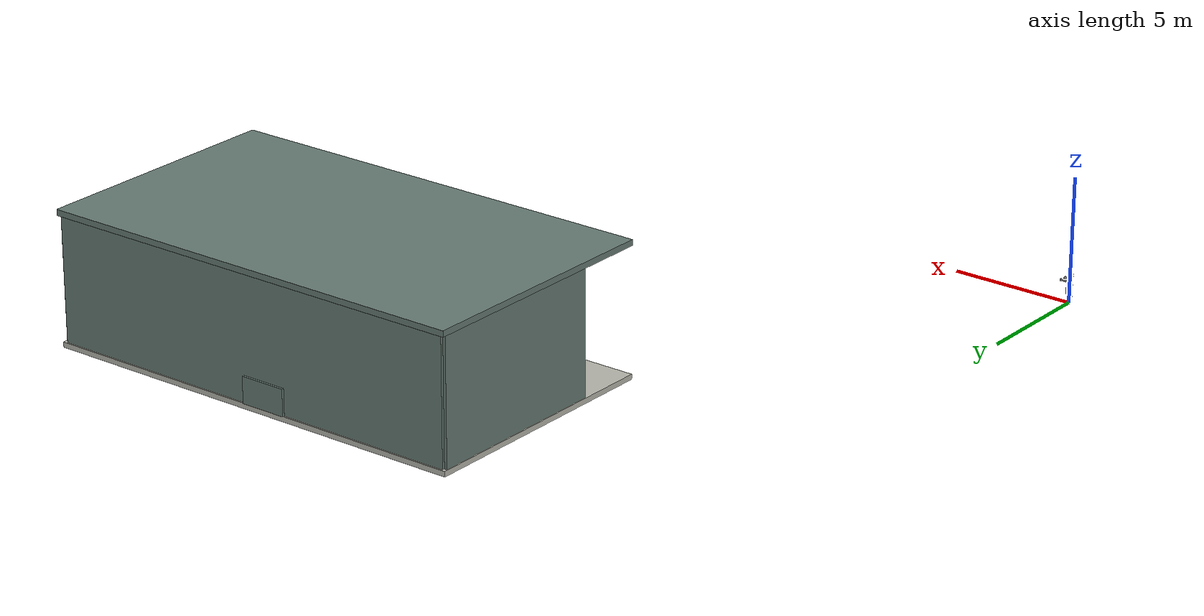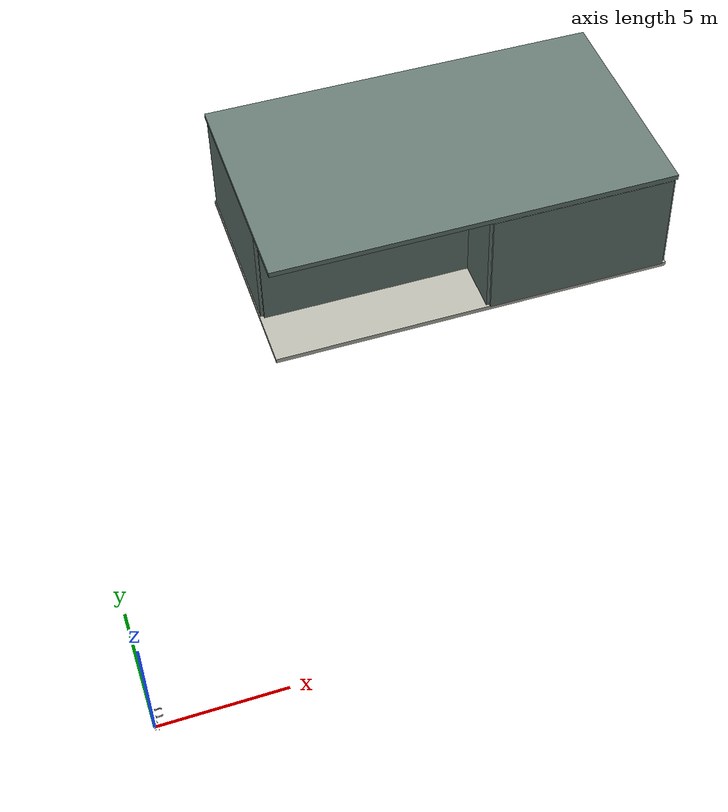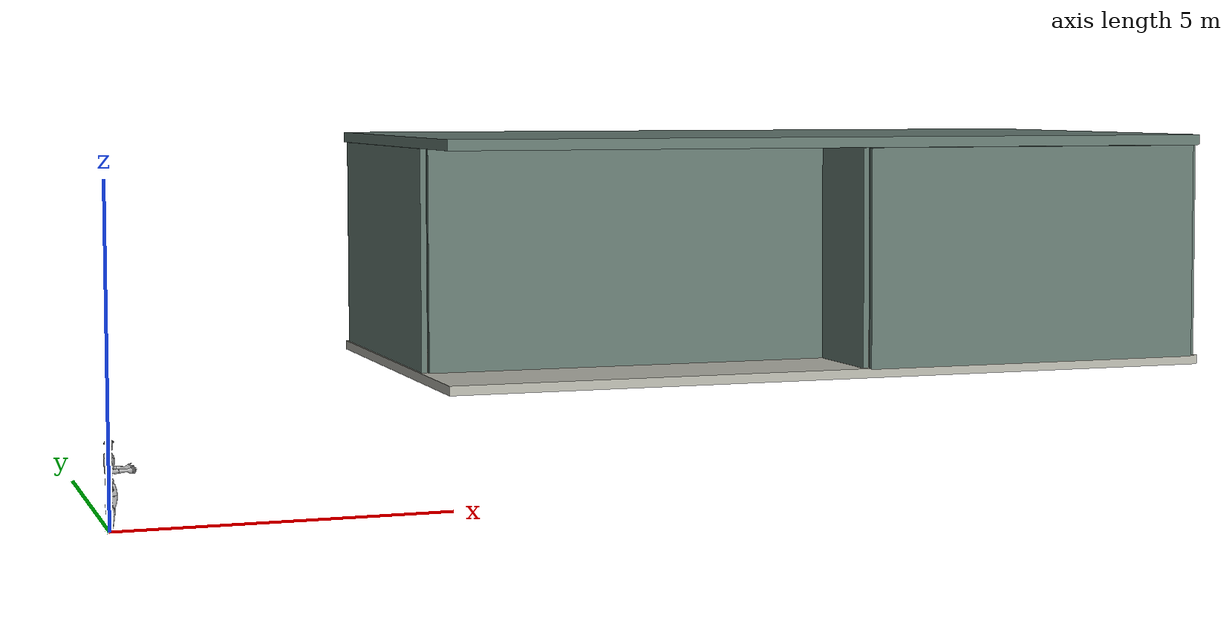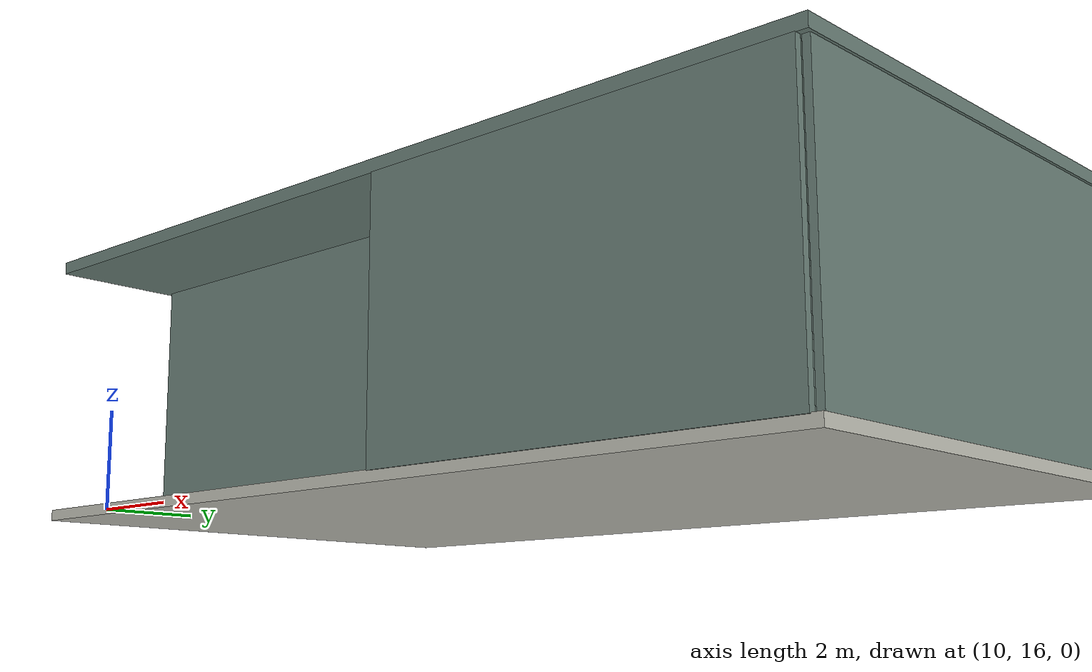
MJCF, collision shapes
<mujoco model="g1_12dof">
  <compiler angle="radian" meshdir="/home/hchen/Documents/astraBlenderTest/world_model_blog/runtime/unitree_rl_gym/resources/robots/g1_description/meshes" />

  <statistic meansize="0.144785" extent="1.23314" center="0.025392 2.0634e-05 -0.245975" />
  <default>
    <joint damping="0.001" armature="0.01" frictionloss="0.1" />
  </default>

  <asset>
    <mesh name="pelvis" file="pelvis.STL" />
    <mesh name="pelvis_contour_link" file="pelvis_contour_link.STL" />
    <mesh name="left_hip_pitch_link" file="left_hip_pitch_link.STL" />
    <mesh name="left_hip_roll_link" file="left_hip_roll_link.STL" />
    <mesh name="left_hip_yaw_link" file="left_hip_yaw_link.STL" />
    <mesh name="left_knee_link" file="left_knee_link.STL" />
    <mesh name="left_ankle_pitch_link" file="left_ankle_pitch_link.STL" />
    <mesh name="left_ankle_roll_link" file="left_ankle_roll_link.STL" />
    <mesh name="right_hip_pitch_link" file="right_hip_pitch_link.STL" />
    <mesh name="right_hip_roll_link" file="right_hip_roll_link.STL" />
    <mesh name="right_hip_yaw_link" file="right_hip_yaw_link.STL" />
    <mesh name="right_knee_link" file="right_knee_link.STL" />
    <mesh name="right_ankle_pitch_link" file="right_ankle_pitch_link.STL" />
    <mesh name="right_ankle_roll_link" file="right_ankle_roll_link.STL" />
    <mesh name="torso_link_23dof_rev_1_0" file="torso_link_23dof_rev_1_0.STL" />
    <mesh name="logo_link" file="logo_link.STL" />
    <mesh name="head_link" file="head_link.STL" />
    <mesh name="left_shoulder_pitch_link" file="left_shoulder_pitch_link.STL" />
    <mesh name="left_shoulder_roll_link" file="left_shoulder_roll_link.STL" />
    <mesh name="left_shoulder_yaw_link" file="left_shoulder_yaw_link.STL" />
    <mesh name="left_elbow_link" file="left_elbow_link.STL" />
    <mesh name="left_wrist_roll_rubber_hand" file="left_wrist_roll_rubber_hand.STL" />
    <mesh name="right_shoulder_pitch_link" file="right_shoulder_pitch_link.STL" />
    <mesh name="right_shoulder_roll_link" file="right_shoulder_roll_link.STL" />
    <mesh name="right_shoulder_yaw_link" file="right_shoulder_yaw_link.STL" />
    <mesh name="right_elbow_link" file="right_elbow_link.STL" />
    <mesh name="right_wrist_roll_rubber_hand" file="right_wrist_roll_rubber_hand.STL" />
  </asset>

  <worldbody>
    <body name="pelvis" pos="0 0 0.793">
      <inertial pos="0.0144905 0.000151462 0.144068" quat="0.999881 -0.000505543 -0.0154276 0.000328408" mass="17.7349" diaginertia="0.552723 0.454092 0.211762" />
      <joint name="floating_base_joint" type="free" limited="false" actuatorfrclimited="false" />
      <geom type="mesh" contype="0" conaffinity="0" group="1" density="0" rgba="0.2 0.2 0.2 1" mesh="pelvis" />
      <geom type="mesh" contype="0" conaffinity="0" group="1" density="0" rgba="0.7 0.7 0.7 1" mesh="pelvis_contour_link" />
      <geom type="mesh" rgba="0.7 0.7 0.7 1" mesh="pelvis_contour_link" />
      <geom type="mesh" contype="0" conaffinity="0" group="1" density="0" rgba="0.7 0.7 0.7 1" mesh="torso_link_23dof_rev_1_0" />
      <geom type="mesh" rgba="0.7 0.7 0.7 1" mesh="torso_link_23dof_rev_1_0" />
      <geom type="mesh" contype="0" conaffinity="0" group="1" density="0" rgba="0.2 0.2 0.2 1" mesh="logo_link" />
      <geom type="mesh" rgba="0.2 0.2 0.2 1" mesh="logo_link" />
      <geom type="mesh" contype="0" conaffinity="0" group="1" density="0" rgba="0.2 0.2 0.2 1" mesh="head_link" />
      <geom type="mesh" rgba="0.2 0.2 0.2 1" mesh="head_link" />
      <geom pos="-7.2e-06 0.10022 0.29178" quat="0.990264 0.139201 1.38722e-05 -9.86868e-05" type="mesh" contype="0" conaffinity="0" group="1" density="0" rgba="0.7 0.7 0.7 1" mesh="left_shoulder_pitch_link" />
      <geom size="0.03 0.025" pos="7.72569e-07 0.141427 0.293195" quat="0.700213 0.0985001 0.700232 0.0983605" type="cylinder" rgba="0.7 0.7 0.7 1" />
      <geom pos="3.73942e-07 0.14056 0.288961" quat="1 3.00026e-05 2.74716e-05 -9.57958e-05" type="mesh" contype="0" conaffinity="0" group="1" density="0" rgba="0.7 0.7 0.7 1" mesh="left_shoulder_roll_link" />
      <geom size="0.03 0.015" pos="-0.00400139 0.146564 0.235962" quat="1 3.00026e-05 2.74716e-05 -9.57958e-05" type="cylinder" rgba="0.7 0.7 0.7 1" />
      <geom pos="-4.10007e-06 0.146807 0.185762" quat="1 3.00026e-05 2.74716e-05 -9.57958e-05" type="mesh" contype="0" conaffinity="0" group="1" density="0" rgba="0.7 0.7 0.7 1" mesh="left_shoulder_yaw_link" />
      <geom pos="-4.10007e-06 0.146807 0.185762" quat="1 3.00026e-05 2.74716e-05 -9.57958e-05" type="mesh" rgba="0.7 0.7 0.7 1" mesh="left_shoulder_yaw_link" />
      <geom pos="0.0157745 0.146808 0.105243" quat="1 3.00026e-05 2.74716e-05 -9.57958e-05" type="mesh" contype="0" conaffinity="0" group="1" density="0" rgba="0.7 0.7 0.7 1" mesh="left_elbow_link" />
      <geom pos="0.0157745 0.146808 0.105243" quat="1 3.00026e-05 2.74716e-05 -9.57958e-05" type="mesh" rgba="0.7 0.7 0.7 1" mesh="left_elbow_link" />
      <geom pos="0.115774 0.148678 0.0952374" quat="1 3.00026e-05 2.74716e-05 -9.57958e-05" type="mesh" contype="0" conaffinity="0" group="1" density="0" rgba="0.7 0.7 0.7 1" mesh="left_wrist_roll_rubber_hand" />
      <geom pos="0.115774 0.148678 0.0952374" quat="1 3.00026e-05 2.74716e-05 -9.57958e-05" type="mesh" rgba="0.7 0.7 0.7 1" mesh="left_wrist_roll_rubber_hand" />
      <geom pos="-7.2e-06 -0.10021 0.29178" quat="0.990264 -0.139201 1.38722e-05 9.86868e-05" type="mesh" contype="0" conaffinity="0" group="1" density="0" rgba="0.7 0.7 0.7 1" mesh="right_shoulder_pitch_link" />
      <geom size="0.03 0.025" pos="7.72569e-07 -0.141417 0.293195" quat="0.700213 -0.0985001 0.700232 -0.0983605" type="cylinder" rgba="0.7 0.7 0.7 1" />
      <geom pos="3.73942e-07 -0.14055 0.288961" quat="1 -3.00026e-05 2.74716e-05 9.57958e-05" type="mesh" contype="0" conaffinity="0" group="1" density="0" rgba="0.7 0.7 0.7 1" mesh="right_shoulder_roll_link" />
      <geom size="0.03 0.015" pos="-0.00400139 -0.146554 0.235962" quat="1 -3.00026e-05 2.74716e-05 9.57958e-05" type="cylinder" rgba="0.7 0.7 0.7 1" />
      <geom pos="-4.10007e-06 -0.146797 0.185762" quat="1 -3.00026e-05 2.74716e-05 9.57958e-05" type="mesh" contype="0" conaffinity="0" group="1" density="0" rgba="0.7 0.7 0.7 1" mesh="right_shoulder_yaw_link" />
      <geom pos="-4.10007e-06 -0.146797 0.185762" quat="1 -3.00026e-05 2.74716e-05 9.57958e-05" type="mesh" rgba="0.7 0.7 0.7 1" mesh="right_shoulder_yaw_link" />
      <geom pos="0.0157745 -0.146798 0.105243" quat="1 -3.00026e-05 2.74716e-05 9.57958e-05" type="mesh" contype="0" conaffinity="0" group="1" density="0" rgba="0.7 0.7 0.7 1" mesh="right_elbow_link" />
      <geom pos="0.0157745 -0.146798 0.105243" quat="1 -3.00026e-05 2.74716e-05 9.57958e-05" type="mesh" rgba="0.7 0.7 0.7 1" mesh="right_elbow_link" />
      <geom pos="0.115774 -0.148668 0.0952374" quat="1 -3.00026e-05 2.74716e-05 9.57958e-05" type="mesh" contype="0" conaffinity="0" group="1" density="0" rgba="0.7 0.7 0.7 1" mesh="right_wrist_roll_rubber_hand" />
      <geom pos="0.115774 -0.148668 0.0952374" quat="1 -3.00026e-05 2.74716e-05 9.57958e-05" type="mesh" rgba="0.7 0.7 0.7 1" mesh="right_wrist_roll_rubber_hand" />
      <body name="left_hip_pitch_link" pos="0 0.064452 -0.1027">
        <inertial pos="0.002741 0.047791 -0.02606" quat="0.954862 0.293964 0.0302556 0.030122" mass="1.35" diaginertia="0.00181517 0.00153422 0.00116212" />
        <joint name="left_hip_pitch_joint" pos="0 0 0" axis="0 1 0" range="-2.5307 2.8798" actuatorfrcrange="-88 88" />
        <geom type="mesh" contype="0" conaffinity="0" group="1" density="0" rgba="0.2 0.2 0.2 1" mesh="left_hip_pitch_link" />
        <geom type="mesh" rgba="0.2 0.2 0.2 1" mesh="left_hip_pitch_link" />
        <body name="left_hip_roll_link" pos="0 0.052 -0.030465" quat="0.996179 0 -0.0873386 0">
          <inertial pos="0.029812 -0.001045 -0.087934" quat="0.977808 -1.97119e-05 0.205576 -0.0403793" mass="1.52" diaginertia="0.00254986 0.00241169 0.00148755" />
          <joint name="left_hip_roll_joint" pos="0 0 0" axis="1 0 0" range="-0.5236 2.9671" actuatorfrcrange="-139 139" />
          <geom type="mesh" contype="0" conaffinity="0" group="1" density="0" rgba="0.7 0.7 0.7 1" mesh="left_hip_roll_link" />
          <geom type="mesh" rgba="0.7 0.7 0.7 1" mesh="left_hip_roll_link" />
          <body name="left_hip_yaw_link" pos="0.025001 0 -0.12412">
            <inertial pos="-0.057709 -0.010981 -0.15078" quat="0.600598 0.15832 0.223482 0.751181" mass="1.702" diaginertia="0.00776166 0.00717575 0.00160139" />
            <joint name="left_hip_yaw_joint" pos="0 0 0" axis="0 0 1" range="-2.7576 2.7576" actuatorfrcrange="-88 88" />
            <geom type="mesh" contype="0" conaffinity="0" group="1" density="0" rgba="0.7 0.7 0.7 1" mesh="left_hip_yaw_link" />
            <geom type="mesh" rgba="0.7 0.7 0.7 1" mesh="left_hip_yaw_link" />
            <body name="left_knee_link" pos="-0.078273 0.0021489 -0.17734" quat="0.996179 0 0.0873386 0">
              <inertial pos="0.005457 0.003964 -0.12074" quat="0.923418 -0.0327699 0.0158246 0.382067" mass="1.932" diaginertia="0.0113804 0.0112778 0.00146458" />
              <joint name="left_knee_joint" pos="0 0 0" axis="0 1 0" range="-0.087267 2.8798" actuatorfrcrange="-139 139" />
              <geom type="mesh" contype="0" conaffinity="0" group="1" density="0" rgba="0.7 0.7 0.7 1" mesh="left_knee_link" />
              <geom type="mesh" rgba="0.7 0.7 0.7 1" mesh="left_knee_link" />
              <body name="left_ankle_pitch_link" pos="0 -9.4445e-05 -0.30001">
                <inertial pos="-0.007269 0 0.011137" quat="0.603053 0.369225 0.369225 0.603053" mass="0.074" diaginertia="1.89e-05 1.40805e-05 6.9195e-06" />
                <joint name="left_ankle_pitch_joint" pos="0 0 0" axis="0 1 0" range="-0.87267 0.5236" actuatorfrcrange="-50 50" />
                <geom type="mesh" contype="0" conaffinity="0" group="1" density="0" rgba="0.7 0.7 0.7 1" mesh="left_ankle_pitch_link" />
                <geom type="mesh" rgba="0.7 0.7 0.7 1" mesh="left_ankle_pitch_link" />
                <body name="left_ankle_roll_link" pos="0 0 -0.017558">
                  <inertial pos="0.026505 0 -0.016425" quat="-0.000481092 0.728482 -0.000618967 0.685065" mass="0.608" diaginertia="0.00167218 0.0016161 0.000217621" />
                  <joint name="left_ankle_roll_joint" pos="0 0 0" axis="1 0 0" range="-0.2618 0.2618" actuatorfrcrange="-50 50" />
                  <geom type="mesh" contype="0" conaffinity="0" group="1" density="0" rgba="0.2 0.2 0.2 1" mesh="left_ankle_roll_link" />
                  <geom size="0.005" pos="-0.05 0.025 -0.03" rgba="0.2 0.2 0.2 1" />
                  <geom size="0.005" pos="-0.05 -0.025 -0.03" rgba="0.2 0.2 0.2 1" />
                  <geom size="0.005" pos="0.12 0.03 -0.03" rgba="0.2 0.2 0.2 1" />
                  <geom size="0.005" pos="0.12 -0.03 -0.03" rgba="0.2 0.2 0.2 1" />
                </body>
              </body>
            </body>
          </body>
        </body>
      </body>
      <body name="right_hip_pitch_link" pos="0 -0.064452 -0.1027">
        <inertial pos="0.002741 -0.047791 -0.02606" quat="0.954862 -0.293964 0.0302556 -0.030122" mass="1.35" diaginertia="0.00181517 0.00153422 0.00116212" />
        <joint name="right_hip_pitch_joint" pos="0 0 0" axis="0 1 0" range="-2.5307 2.8798" actuatorfrcrange="-88 88" />
        <geom type="mesh" contype="0" conaffinity="0" group="1" density="0" rgba="0.2 0.2 0.2 1" mesh="right_hip_pitch_link" />
        <geom type="mesh" rgba="0.2 0.2 0.2 1" mesh="right_hip_pitch_link" />
        <body name="right_hip_roll_link" pos="0 -0.052 -0.030465" quat="0.996179 0 -0.0873386 0">
          <inertial pos="0.029812 0.001045 -0.087934" quat="0.977808 1.97119e-05 0.205576 0.0403793" mass="1.52" diaginertia="0.00254986 0.00241169 0.00148755" />
          <joint name="right_hip_roll_joint" pos="0 0 0" axis="1 0 0" range="-2.9671 0.5236" actuatorfrcrange="-139 139" />
          <geom type="mesh" contype="0" conaffinity="0" group="1" density="0" rgba="0.7 0.7 0.7 1" mesh="right_hip_roll_link" />
          <geom type="mesh" rgba="0.7 0.7 0.7 1" mesh="right_hip_roll_link" />
          <body name="right_hip_yaw_link" pos="0.025001 0 -0.12412">
            <inertial pos="-0.057709 0.010981 -0.15078" quat="0.751181 0.223482 0.15832 0.600598" mass="1.702" diaginertia="0.00776166 0.00717575 0.00160139" />
            <joint name="right_hip_yaw_joint" pos="0 0 0" axis="0 0 1" range="-2.7576 2.7576" actuatorfrcrange="-88 88" />
            <geom type="mesh" contype="0" conaffinity="0" group="1" density="0" rgba="0.7 0.7 0.7 1" mesh="right_hip_yaw_link" />
            <geom type="mesh" rgba="0.7 0.7 0.7 1" mesh="right_hip_yaw_link" />
            <body name="right_knee_link" pos="-0.078273 -0.0021489 -0.17734" quat="0.996179 0 0.0873386 0">
              <inertial pos="0.005457 -0.003964 -0.12074" quat="0.923439 0.0345276 0.0116333 -0.382012" mass="1.932" diaginertia="0.011374 0.0112843 0.00146452" />
              <joint name="right_knee_joint" pos="0 0 0" axis="0 1 0" range="-0.087267 2.8798" actuatorfrcrange="-139 139" />
              <geom type="mesh" contype="0" conaffinity="0" group="1" density="0" rgba="0.7 0.7 0.7 1" mesh="right_knee_link" />
              <geom type="mesh" rgba="0.7 0.7 0.7 1" mesh="right_knee_link" />
              <body name="right_ankle_pitch_link" pos="0 9.4445e-05 -0.30001">
                <inertial pos="-0.007269 0 0.011137" quat="0.603053 0.369225 0.369225 0.603053" mass="0.074" diaginertia="1.89e-05 1.40805e-05 6.9195e-06" />
                <joint name="right_ankle_pitch_joint" pos="0 0 0" axis="0 1 0" range="-0.87267 0.5236" actuatorfrcrange="-50 50" />
                <geom type="mesh" contype="0" conaffinity="0" group="1" density="0" rgba="0.7 0.7 0.7 1" mesh="right_ankle_pitch_link" />
                <geom type="mesh" rgba="0.7 0.7 0.7 1" mesh="right_ankle_pitch_link" />
                <body name="right_ankle_roll_link" pos="0 0 -0.017558">
                  <inertial pos="0.026505 0 -0.016425" quat="0.000481092 0.728482 0.000618967 0.685065" mass="0.608" diaginertia="0.00167218 0.0016161 0.000217621" />
                  <joint name="right_ankle_roll_joint" pos="0 0 0" axis="1 0 0" range="-0.2618 0.2618" actuatorfrcrange="-50 50" />
                  <geom type="mesh" contype="0" conaffinity="0" group="1" density="0" rgba="0.2 0.2 0.2 1" mesh="right_ankle_roll_link" />
                  <geom size="0.005" pos="-0.05 0.025 -0.03" rgba="0.2 0.2 0.2 1" />
                  <geom size="0.005" pos="-0.05 -0.025 -0.03" rgba="0.2 0.2 0.2 1" />
                  <geom size="0.005" pos="0.12 0.03 -0.03" rgba="0.2 0.2 0.2 1" />
                  <geom size="0.005" pos="0.12 -0.03 -0.03" rgba="0.2 0.2 0.2 1" />
                </body>
              </body>
            </body>
          </body>
        </body>
      </body>
    </body>
  <light pos="0 0 12" dir="0 0 -1" directional="true" diffuse="0.8 0.8 0.8" /><geom name="world_obstacle_0" type="box" pos="13.774999618530273 18.030000686645508 2.499999910593033" size="4.767999649047852 0.06500053405761719 2.49249991774559" rgba=".40 .48 .45 .12" friction=".8 .02 .002" /><geom name="world_obstacle_1" type="box" pos="22.674999237060547 15.479999542236328 2.499999910593033" size="4.118000030517578 0.06499958038330078 2.49249991774559" rgba=".40 .48 .45 .12" friction=".8 .02 .002" /><geom name="world_obstacle_2" type="box" pos="18.479999542236328 16.82499933242798 2.499999910593033" size="0.06500053405761719 1.2679991722106934 2.49249991774559" rgba=".40 .48 .45 .12" friction=".8 .02 .002" /><geom name="world_obstacle_3" type="box" pos="26.8700008392334 20.675000190734863 2.499999910593033" size="0.06500053405761719 5.1180009841918945 2.49249991774559" rgba=".40 .48 .45 .12" friction=".8 .02 .002" /><geom name="world_obstacle_4" type="box" pos="8.930000305175781 21.949999809265137 2.499999910593033" size="0.06499958038330078 3.8429994583129883 2.49249991774559" rgba=".40 .48 .45 .12" friction=".8 .02 .002" /><geom name="world_obstacle_5" type="box" pos="17.899999141693115 20.700000762939453 5.119999885559082" size="9.074999332427979 5.25 0.11999988555908203" rgba=".40 .48 .45 .12" friction=".8 .02 .002" /><geom name="world_obstacle_6" type="box" pos="17.90000009536743 25.79124927520752 2.509999990463257" size="8.925000667572021 0.10624980926513672 2.509999990463257" rgba=".40 .48 .45 .12" friction=".8 .02 .002" /><geom name="world_obstacle_7" type="box" pos="13.020999908447266 25.61625099182129 1.434999942779541" size="1.0364999771118164 0.09874916076660156 1.4249999523162842" rgba=".40 .48 .45 .12" friction=".8 .02 .002" /><geom name="world_obstacle_8" type="box" pos="22.847999572753906 25.61625099182129 1.434999942779541" size="0.9775009155273438 0.09874916076660156 1.4249999523162842" rgba=".40 .48 .45 .12" friction=".8 .02 .002" /><geom name="world_obstacle_9" type="box" pos="18.049999237060547 25.059999465942383 2.509999990463257" size="0.3600006103515625 0.3600006103515625 2.484999895095825" rgba=".40 .48 .45 .12" friction=".8 .02 .002" /><geom name="world_obstacle_10" type="box" pos="15.820000171661377 23.100000381469727 0.2774999886751175" size="0.440000057220459 0.4400005340576172 0.24249999225139618" rgba=".40 .48 .45 .12" friction=".8 .02 .002" /><geom name="world_obstacle_11" type="box" pos="16.68000030517578 23.072477340698242 0.4125000089406967" size="0.4400005340576172 0.4424781799316406 0.3775000125169754" rgba=".40 .48 .45 .12" friction=".8 .02 .002" /><geom name="world_obstacle_12" type="box" pos="17.149999618530273 22.239999771118164 0.2774999886751175" size="0.5100002288818359 0.5100002288818359 0.24249999225139618" rgba=".40 .48 .45 .12" friction=".8 .02 .002" /><geom name="world_obstacle_13" type="box" pos="16.68000030517578 21.31752300262451 0.4125000089406967" size="0.4500007629394531 0.45247745513916016 0.3775000125169754" rgba=".40 .48 .45 .12" friction=".8 .02 .002" /><geom name="world_obstacle_14" type="box" pos="15.869999408721924 21.479999542236328 0.2774999886751175" size="0.42999982833862305 0.43000030517578125 0.24249999225139618" rgba=".40 .48 .45 .12" friction=".8 .02 .002" /><geom name="world_obstacle_15" type="box" pos="12.793484210968018 20.49349880218506 0.36249999701976776" size="0.3614840507507324 0.3625001907348633 0.32750000059604645" rgba=".40 .48 .45 .12" friction=".8 .02 .002" /><geom name="world_obstacle_16" type="box" pos="13.395999908447266 20.44499969482422 0.22750000655651093" size="0.35200023651123047 0.35199928283691406 0.1925000101327896" rgba=".40 .48 .45 .12" friction=".8 .02 .002" /><geom name="world_obstacle_17" type="box" pos="12.2985258102417 20.780552864074707 0.36249999701976776" size="0.3924741744995117 0.39244747161865234 0.32750000059604645" rgba=".40 .48 .45 .12" friction=".8 .02 .002" /><geom name="world_obstacle_18" type="box" pos="12.166000366210938 21.635000228881836 0.22750000655651093" size="0.4099998474121094 0.4099998474121094 0.1925000101327896" rgba=".40 .48 .45 .12" friction=".8 .02 .002" /><geom name="world_obstacle_19" type="box" pos="16.12000036239624 22.25 0.22500000149011612" size="0.45999956130981445 0.5300006866455078 0.20750000327825546" rgba=".40 .48 .45 .12" friction=".8 .02 .002" /><geom name="world_obstacle_20" type="box" pos="13.025810241699219 21.585689544677734 0.20875000208616257" size="0.595250129699707 0.5761146545410156 0.1912500038743019" rgba=".40 .48 .45 .12" friction=".8 .02 .002" /><geom name="world_obstacle_21" type="box" pos="18.788297653198242 23.062698364257812 0.8149309158325195" size="0.6345043182373047 0.8676986694335938 0.7899309396743774" rgba=".40 .48 .45 .12" friction=".8 .02 .002" /><geom name="world_obstacle_22" type="box" pos="18.869529724121094 20.73341941833496 0.798881471157074" size="0.6759548187255859 0.8713455200195312 0.7738814949989319" rgba=".40 .48 .45 .12" friction=".8 .02 .002" /><geom name="world_obstacle_23" type="box" pos="17.137246131896973 25.045644760131836 0.5570493461564183" size="0.9382410049438477 0.9404067993164062 0.5320493457838893" rgba=".40 .48 .45 .12" friction=".8 .02 .002" /><geom name="world_obstacle_24" type="box" pos="10.051774024963379 24.614748001098633 0.5560160400345922" size="0.8728389739990234 0.8869361877441406 0.5310160396620631" rgba=".40 .48 .45 .12" friction=".8 .02 .002" /><geom name="world_obstacle_25" type="box" pos="25.558094024658203 16.812252044677734 0.556619537062943" size="0.9007186889648438 0.8745365142822266 0.531619536690414" rgba=".40 .48 .45 .12" friction=".8 .02 .002" /><geom name="world_obstacle_26" type="box" pos="15.862651348114014 18.780210494995117 0.6503057004883885" size="0.6154046058654785 0.5995712280273438 0.6253057001158595" rgba=".40 .48 .45 .12" friction=".8 .02 .002" /><geom name="world_obstacle_27" type="box" pos="26.152036666870117 24.305158615112305 0.9788968088105321" size="0.45601654052734375 0.4682960510253906 0.9538968084380031" rgba=".40 .48 .45 .12" friction=".8 .02 .002" /><geom name="world_obstacle_28" type="box" pos="26.146730422973633 19.20548725128174 0.9790637018159032" size="0.46447181701660156 0.4642801284790039 0.9540637014433742" rgba=".40 .48 .45 .12" friction=".8 .02 .002" /><geom name="world_obstacle_29" type="box" pos="11.099941730499268 20.150063514709473 1.069340541958809" size="0.40185022354125977 0.3896608352661133 1.0443405359983444" rgba=".40 .48 .45 .12" friction=".8 .02 .002" /><geom name="world_obstacle_30" type="box" pos="9.940345287322998 23.302902221679688 1.069340541958809" size="0.36155080795288086 0.39681243896484375 1.0443405359983444" rgba=".40 .48 .45 .12" friction=".8 .02 .002" /><geom name="world_obstacle_31" type="box" pos="25.49000072479248 21.800000190734863 0.4599999971687794" size="0.5399999618530273 1.8000001907348633 0.41999999806284904" rgba=".40 .48 .45 .12" friction=".8 .02 .002" /><geom name="world_obstacle_32" type="box" pos="25.149999618530273 18.1299991607666 0.9875000240281224" size="0.23999977111816406 0.23999977111816406 0.9625000236555934" rgba=".40 .48 .45 .12" friction=".8 .02 .002" /><geom name="world_obstacle_33" type="box" pos="18.799999237060547 17.799999237060547 0.9875000240281224" size="0.23999977111816406 0.23999977111816406 0.9625000236555934" rgba=".40 .48 .45 .12" friction=".8 .02 .002" /><geom name="world_obstacle_34" type="box" pos="9.800000190734863 20.0 0.9875000240281224" size="0.23999977111816406 0.23999977111816406 0.9625000236555934" rgba=".40 .48 .45 .12" friction=".8 .02 .002" /><geom name="world_floor_0" type="box" pos="17.899999141693115 20.700000762939453 -0.08000000193715096" size="9.074999332427979 5.25 0.10500000044703484" rgba=".72 .72 .68 1" friction="0.55 .02 .002" /><geom name="world_floor_1" type="box" pos="17.54999876022339 22.0 0.032999999821186066" size="7.549999713897705 2.700000762939453 0.008000001311302185" rgba=".72 .72 .68 1" friction="0.55 .02 .002" /></worldbody>
  <actuator>
    <motor name="left_hip_pitch_joint" joint="left_hip_pitch_joint" />
    <motor name="left_hip_roll_joint" joint="left_hip_roll_joint" />
    <motor name="left_hip_yaw_joint" joint="left_hip_yaw_joint" />
    <motor name="left_knee_joint" joint="left_knee_joint" />
    <motor name="left_ankle_pitch_joint" joint="left_ankle_pitch_joint" />
    <motor name="left_ankle_roll_joint" joint="left_ankle_roll_joint" />
    <motor name="right_hip_pitch_joint" joint="right_hip_pitch_joint" />
    <motor name="right_hip_roll_joint" joint="right_hip_roll_joint" />
    <motor name="right_hip_yaw_joint" joint="right_hip_yaw_joint" />
    <motor name="right_knee_joint" joint="right_knee_joint" />
    <motor name="right_ankle_pitch_joint" joint="right_ankle_pitch_joint" />
    <motor name="right_ankle_roll_joint" joint="right_ankle_roll_joint" />
  </actuator>
<visual><global offwidth="960" offheight="720" /></visual></mujoco>
